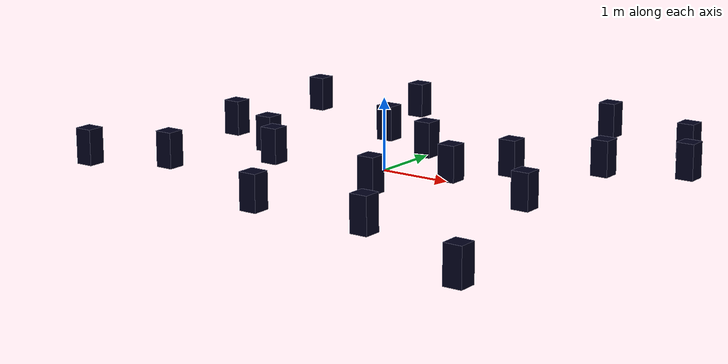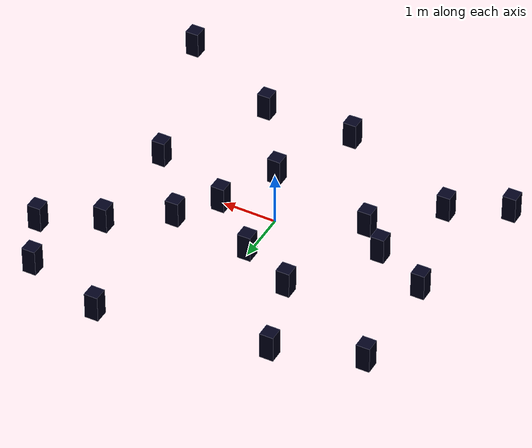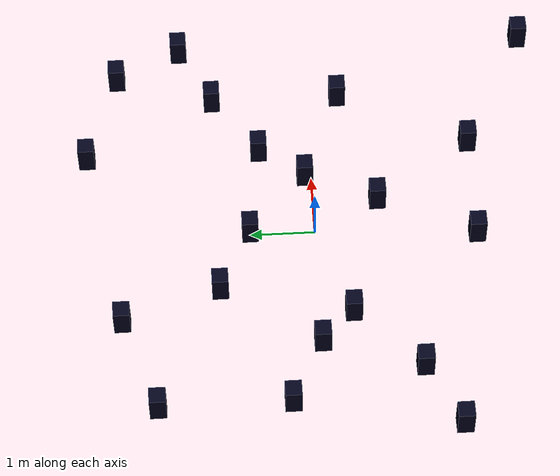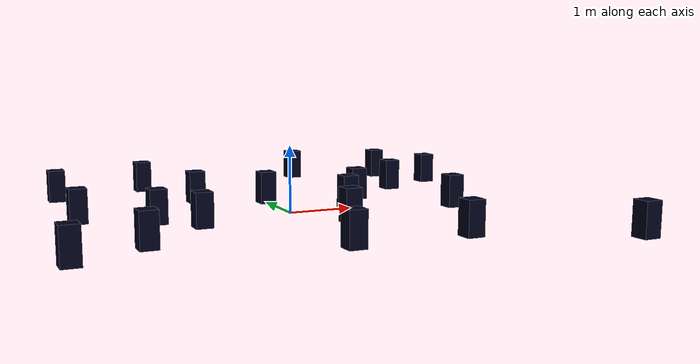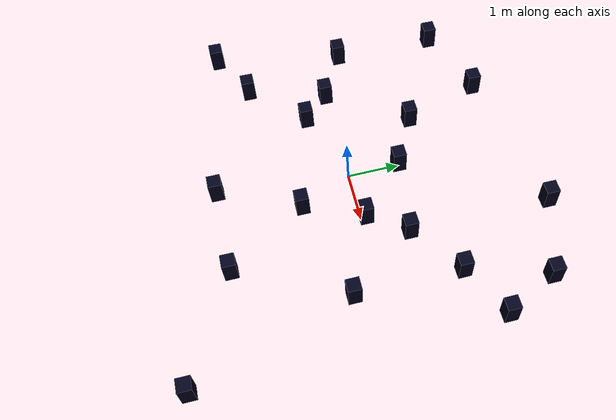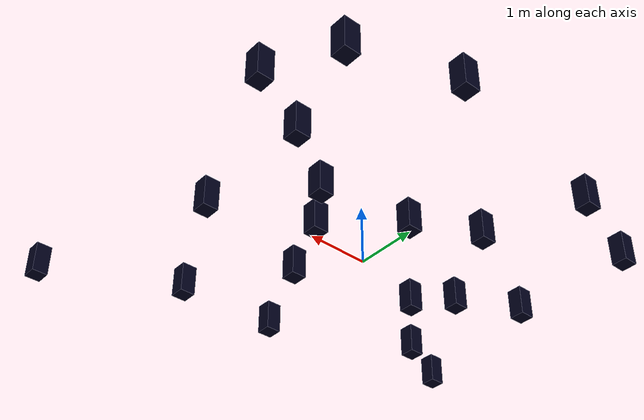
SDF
<!--
@file obstacles.sdf
@author Daniel Onderka (xonder05)
-->

<sdf version="1.9">
  <model name="obstacles">

    <model name="obstacle1">
      <pose>-3.5 -2 0.25 0 0 0</pose>
      <link name="link">
        <visual name="visual">
          <geometry><box><size>0.25 0.25 0.5</size></box></geometry>
          <material><diffuse>0.0 0.0 0.1 1</diffuse></material>
        </visual>
        <collision name="collision">
          <geometry><box><size>0.25 0.25 0.5</size></box></geometry>
        </collision>
      </link>
    </model>

    <model name="obstacle2">
      <pose>3.5 2 0.25 0 0 0</pose>
      <link name="link">
        <visual name="visual">
          <geometry><box><size>0.25 0.25 0.5</size></box></geometry>
          <material><diffuse>0.0 0.0 0.1 1</diffuse></material>
        </visual>
        <collision name="collision">
          <geometry><box><size>0.25 0.25 0.5</size></box></geometry>
        </collision>
      </link>
    </model>

    <model name="obstacle3">
      <pose>-1.5 -0.5 0.25 0 0 0</pose>
      <link name="link">
        <visual name="visual">
          <geometry><box><size>0.25 0.25 0.5</size></box></geometry>
          <material><diffuse>0.0 0.0 0.1 1</diffuse></material>
        </visual>
        <collision name="collision">
          <geometry><box><size>0.25 0.25 0.5</size></box></geometry>
        </collision>
      </link>
    </model>

    <model name="obstacle4">
      <pose>1.5 0.8 0.25 0 0 0</pose>
      <link name="link">
        <visual name="visual">
          <geometry><box><size>0.25 0.25 0.5</size></box></geometry>
          <material><diffuse>0.0 0.0 0.1 1</diffuse></material>
        </visual>
        <collision name="collision">
          <geometry><box><size>0.25 0.25 0.5</size></box></geometry>
        </collision>
      </link>
    </model>

    <model name="obstacle5">
      <pose>-3 2.5 0.25 0 0 0</pose>
      <link name="link">
        <visual name="visual">
          <geometry><box><size>0.25 0.25 0.5</size></box></geometry>
          <material><diffuse>0.0 0.0 0.1 1</diffuse></material>
        </visual>
        <collision name="collision">
          <geometry><box><size>0.25 0.25 0.5</size></box></geometry>
        </collision>
      </link>
    </model>

    <model name="obstacle6">
      <pose>2.5 1.5 0.25 0 0 0</pose>
      <link name="link">
        <visual name="visual">
          <geometry><box><size>0.25 0.25 0.5</size></box></geometry>
          <material><diffuse>0.0 0.0 0.1 1</diffuse></material>
        </visual>
        <collision name="collision">
          <geometry><box><size>0.25 0.25 0.5</size></box></geometry>
        </collision>
      </link>
    </model>

    <model name="obstacle7">
      <pose>-1.5 3 0.25 0 0 0</pose>
      <link name="link">
        <visual name="visual">
          <geometry><box><size>0.25 0.25 0.5</size></box></geometry>
          <material><diffuse>0.0 0.0 0.1 1</diffuse></material>
        </visual>
        <collision name="collision">
          <geometry><box><size>0.25 0.25 0.5</size></box></geometry>
        </collision>
      </link>
    </model>

    <model name="obstacle8">
      <pose>0 1 0.25 0 0 0</pose>
      <link name="link">
        <visual name="visual">
          <geometry><box><size>0.25 0.25 0.5</size></box></geometry>
          <material><diffuse>0.0 0.0 0.1 1</diffuse></material>
        </visual>
        <collision name="collision">
          <geometry><box><size>0.25 0.25 0.5</size></box></geometry>
        </collision>
      </link>
    </model>

    <model name="obstacle9">
      <pose>3 3 0.25 0 0 0</pose>
      <link name="link">
        <visual name="visual">
          <geometry><box><size>0.25 0.25 0.5</size></box></geometry>
          <material><diffuse>0.0 0.0 0.1 1</diffuse></material>
        </visual>
        <collision name="collision">
          <geometry><box><size>0.25 0.25 0.5</size></box></geometry>
        </collision>
      </link>
    </model>

    <model name="obstacle10">
      <pose>-2 0 0.25 0 0 0</pose>
      <link name="link">
        <visual name="visual">
          <geometry><box><size>0.25 0.25 0.5</size></box></geometry>
          <material><diffuse>0.0 0.0 0.1 1</diffuse></material>
        </visual>
        <collision name="collision">
          <geometry><box><size>0.25 0.25 0.5</size></box></geometry>
        </collision>
      </link>
    </model>

    <model name="obstacle11">
      <pose>1.5 -2.5 0.25 0 0 0</pose>
      <link name="link">
        <visual name="visual">
          <geometry><box><size>0.25 0.25 0.5</size></box></geometry>
          <material><diffuse>0.0 0.0 0.1 1</diffuse></material>
        </visual>
        <collision name="collision">
          <geometry><box><size>0.25 0.25 0.5</size></box></geometry>
        </collision>
      </link>
    </model>

    <model name="obstacle12">
      <pose>-3 0.5 0.25 0 0 0</pose>
      <link name="link">
        <visual name="visual">
          <geometry><box><size>0.25 0.25 0.5</size></box></geometry>
          <material><diffuse>0.0 0.0 0.1 1</diffuse></material>
        </visual>
        <collision name="collision">
          <geometry><box><size>0.25 0.25 0.5</size></box></geometry>
        </collision>
      </link>
    </model>

    <model name="obstacle13">
      <pose>1.5 3.5 0.25 0 0 0</pose>
      <link name="link">
        <visual name="visual">
          <geometry><box><size>0.25 0.25 0.5</size></box></geometry>
          <material><diffuse>0.0 0.0 0.1 1</diffuse></material>
        </visual>
        <collision name="collision">
          <geometry><box><size>0.25 0.25 0.5</size></box></geometry>
        </collision>
      </link>
    </model>

    <model name="obstacle14">
      <pose>-2.5 -1.5 0.25 0 0 0</pose>
      <link name="link">
        <visual name="visual">
          <geometry><box><size>0.25 0.25 0.5</size></box></geometry>
          <material><diffuse>0.0 0.0 0.1 1</diffuse></material>
        </visual>
        <collision name="collision">
          <geometry><box><size>0.25 0.25 0.5</size></box></geometry>
        </collision>
      </link>
    </model>

    <model name="obstacle15">
      <pose>0.5 -1 0.25 0 0 0</pose>
      <link name="link">
        <visual name="visual">
          <geometry><box><size>0.25 0.25 0.5</size></box></geometry>
          <material><diffuse>0.0 0.0 0.1 1</diffuse></material>
        </visual>
        <collision name="collision">
          <geometry><box><size>0.25 0.25 0.5</size></box></geometry>
        </collision>
      </link>
    </model>

    <model name="obstacle16">
      <pose>3.5 -3.5 0.25 0 0 0</pose>
      <link name="link">
        <visual name="visual">
          <geometry><box><size>0.25 0.25 0.5</size></box></geometry>
          <material><diffuse>0.0 0.0 0.1 1</diffuse></material>
        </visual>
        <collision name="collision">
          <geometry><box><size>0.25 0.25 0.5</size></box></geometry>
        </collision>
      </link>
    </model>

    <model name="obstacle17">
      <pose>-1 1.5 0.25 0 0 0</pose>
      <link name="link">
        <visual name="visual">
          <geometry><box><size>0.25 0.25 0.5</size></box></geometry>
          <material><diffuse>0.0 0.0 0.1 1</diffuse></material>
        </visual>
        <collision name="collision">
          <geometry><box><size>0.25 0.25 0.5</size></box></geometry>
        </collision>
      </link>
    </model>

    <model name="obstacle18">
      <pose>2.5 -0.5 0.25 0 0 0</pose>
      <link name="link">
        <visual name="visual">
          <geometry><box><size>0.25 0.25 0.5</size></box></geometry>
          <material><diffuse>0.0 0.0 0.1 1</diffuse></material>
        </visual>
        <collision name="collision">
          <geometry><box><size>0.25 0.25 0.5</size></box></geometry>
        </collision>
      </link>
    </model>

    <model name="obstacle19">
      <pose>-0.2 -2.5 0.25 0 0 0</pose>
      <link name="link">
        <visual name="visual">
          <geometry><box><size>0.25 0.25 0.5</size></box></geometry>
          <material><diffuse>0.0 0.0 0.1 1</diffuse></material>
        </visual>
        <collision name="collision">
          <geometry><box><size>0.25 0.25 0.5</size></box></geometry>
        </collision>
      </link>
    </model>

    <model name="obstacle20">
      <pose>1 0.1 0.25 0 0 0</pose>
      <link name="link">
        <visual name="visual">
          <geometry><box><size>0.25 0.25 0.5</size></box></geometry>
          <material><diffuse>0.0 0.0 0.1 1</diffuse></material>
        </visual>
        <collision name="collision">
          <geometry><box><size>0.25 0.25 0.5</size></box></geometry>
        </collision>
      </link>
    </model>

  </model>
</sdf>
